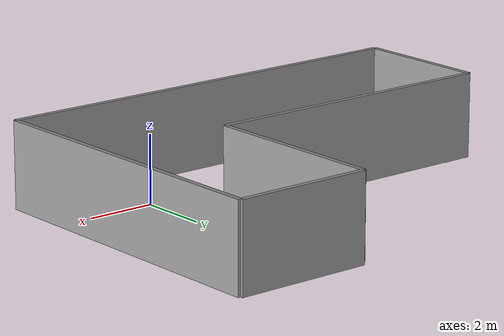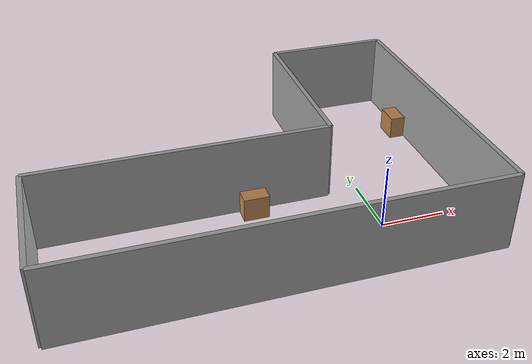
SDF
<?xml version='1.0'?>
<sdf version='1.6'>
  <model name='corridor'>
    <pose frame=''>0 0 0 0 0 0</pose>

    <!-- Wall_0 — south wall of horizontal leg: y=-2, x in [-10, 3], length 13 -->
    <link name='Wall_0'>
      <collision name='Wall_0_Collision'>
        <geometry>
          <box><size>13 0.15 2.5</size></box>
        </geometry>
        <pose frame=''>0 0 1.25 0 -0 0</pose>
      </collision>
      <visual name='Wall_0_Visual'>
        <pose frame=''>0 0 1.25 0 -0 0</pose>
        <geometry>
          <box><size>13 0.15 2.5</size></box>
        </geometry>
        <material>
          <script>
            <uri>file://media/materials/scripts/gazebo.material</uri>
            <name>Gazebo/Grey</name>
          </script>
          <ambient>1 1 1 1</ambient>
        </material>
      </visual>
      <pose frame=''>-3.5 -2 0 0 -0 0</pose>
    </link>

    <!-- Wall_1 — east wall (full L height): x=+3, y in [-2, 7.5], length 9.5 -->
    <link name='Wall_1'>
      <collision name='Wall_1_Collision'>
        <geometry>
          <box><size>9.5 0.15 2.5</size></box>
        </geometry>
        <pose frame=''>0 0 1.25 0 -0 0</pose>
      </collision>
      <visual name='Wall_1_Visual'>
        <pose frame=''>0 0 1.25 0 -0 0</pose>
        <geometry>
          <box><size>9.5 0.15 2.5</size></box>
        </geometry>
        <material>
          <script>
            <uri>file://media/materials/scripts/gazebo.material</uri>
            <name>Gazebo/Grey</name>
          </script>
          <ambient>1 1 1 1</ambient>
        </material>
      </visual>
      <pose frame=''>3 2.75 0 0 0 1.5708</pose>
    </link>

    <!-- Wall_2 — top of vertical leg: y=+7.5, x in [-1, 3], length 4 -->
    <link name='Wall_2'>
      <collision name='Wall_2_Collision'>
        <geometry>
          <box><size>4 0.15 2.5</size></box>
        </geometry>
        <pose frame=''>0 0 1.25 0 -0 0</pose>
      </collision>
      <visual name='Wall_2_Visual'>
        <pose frame=''>0 0 1.25 0 -0 0</pose>
        <geometry>
          <box><size>4 0.15 2.5</size></box>
        </geometry>
        <material>
          <script>
            <uri>file://media/materials/scripts/gazebo.material</uri>
            <name>Gazebo/Grey</name>
          </script>
          <ambient>1 1 1 1</ambient>
        </material>
      </visual>
      <pose frame=''>1 7.5 0 0 -0 0</pose>
    </link>

    <!-- Wall_3 — inside west wall of vertical leg: x=-1, y in [2, 7.5], length 5.5 -->
    <link name='Wall_3'>
      <collision name='Wall_3_Collision'>
        <geometry>
          <box><size>5.5 0.15 2.5</size></box>
        </geometry>
        <pose frame=''>0 0 1.25 0 -0 0</pose>
      </collision>
      <visual name='Wall_3_Visual'>
        <pose frame=''>0 0 1.25 0 -0 0</pose>
        <geometry>
          <box><size>5.5 0.15 2.5</size></box>
        </geometry>
        <material>
          <script>
            <uri>file://media/materials/scripts/gazebo.material</uri>
            <name>Gazebo/Grey</name>
          </script>
          <ambient>1 1 1 1</ambient>
        </material>
      </visual>
      <pose frame=''>-1 4.75 0 0 0 1.5708</pose>
    </link>

    <!-- Wall_4 — north wall of horizontal leg (west of vertical leg): y=+2, x in [-10, -1], length 9 -->
    <link name='Wall_4'>
      <collision name='Wall_4_Collision'>
        <geometry>
          <box><size>9 0.15 2.5</size></box>
        </geometry>
        <pose frame=''>0 0 1.25 0 -0 0</pose>
      </collision>
      <visual name='Wall_4_Visual'>
        <pose frame=''>0 0 1.25 0 -0 0</pose>
        <geometry>
          <box><size>9 0.15 2.5</size></box>
        </geometry>
        <material>
          <script>
            <uri>file://media/materials/scripts/gazebo.material</uri>
            <name>Gazebo/Grey</name>
          </script>
          <ambient>1 1 1 1</ambient>
        </material>
      </visual>
      <pose frame=''>-5.5 2 0 0 -0 0</pose>
    </link>

    <!-- Wall_5 — west wall of horizontal leg: x=-10, y in [-2, 2], length 4 -->
    <link name='Wall_5'>
      <collision name='Wall_5_Collision'>
        <geometry>
          <box><size>4 0.15 2.5</size></box>
        </geometry>
        <pose frame=''>0 0 1.25 0 -0 0</pose>
      </collision>
      <visual name='Wall_5_Visual'>
        <pose frame=''>0 0 1.25 0 -0 0</pose>
        <geometry>
          <box><size>4 0.15 2.5</size></box>
        </geometry>
        <material>
          <script>
            <uri>file://media/materials/scripts/gazebo.material</uri>
            <name>Gazebo/Grey</name>
          </script>
          <ambient>1 1 1 1</ambient>
        </material>
      </visual>
      <pose frame=''>-10 0 0 0 0 1.5708</pose>
    </link>

    <!-- Desk_1 — against south wall in horizontal leg, x=-7 -->
    <link name='Desk_1'>
      <collision name='Desk_1_Collision'>
        <geometry>
          <box><size>0.8 0.5 0.75</size></box>
        </geometry>
        <pose frame=''>0 0 0.375 0 0 0</pose>
      </collision>
      <visual name='Desk_1_Visual'>
        <pose frame=''>0 0 0.375 0 0 0</pose>
        <geometry>
          <box><size>0.8 0.5 0.75</size></box>
        </geometry>
        <material>
          <script>
            <uri>file://media/materials/scripts/gazebo.material</uri>
            <name>Gazebo/Wood</name>
          </script>
          <ambient>1 1 1 1</ambient>
        </material>
      </visual>
      <pose frame=''>-7 -1.65 0 0 0 0</pose>
    </link>

    <!-- Desk_2 — against north wall in horizontal leg, x=-3.5 -->
    <link name='Desk_2'>
      <collision name='Desk_2_Collision'>
        <geometry>
          <box><size>0.8 0.5 0.75</size></box>
        </geometry>
        <pose frame=''>0 0 0.375 0 0 0</pose>
      </collision>
      <visual name='Desk_2_Visual'>
        <pose frame=''>0 0 0.375 0 0 0</pose>
        <geometry>
          <box><size>0.8 0.5 0.75</size></box>
        </geometry>
        <material>
          <script>
            <uri>file://media/materials/scripts/gazebo.material</uri>
            <name>Gazebo/Wood</name>
          </script>
          <ambient>1 1 1 1</ambient>
        </material>
      </visual>
      <pose frame=''>-3.5 1.65 0 0 0 0</pose>
    </link>

    <!-- Desk_3 — against south wall near the corner, x=1 -->
    <link name='Desk_3'>
      <collision name='Desk_3_Collision'>
        <geometry>
          <box><size>0.8 0.5 0.75</size></box>
        </geometry>
        <pose frame=''>0 0 0.375 0 0 0</pose>
      </collision>
      <visual name='Desk_3_Visual'>
        <pose frame=''>0 0 0.375 0 0 0</pose>
        <geometry>
          <box><size>0.8 0.5 0.75</size></box>
        </geometry>
        <material>
          <script>
            <uri>file://media/materials/scripts/gazebo.material</uri>
            <name>Gazebo/Wood</name>
          </script>
          <ambient>1 1 1 1</ambient>
        </material>
      </visual>
      <pose frame=''>1 -1.65 0 0 0 0</pose>
    </link>

    <!-- Desk_4 — against east wall in vertical leg, y=5 (rotated 90°) -->
    <link name='Desk_4'>
      <collision name='Desk_4_Collision'>
        <geometry>
          <box><size>0.5 0.8 0.75</size></box>
        </geometry>
        <pose frame=''>0 0 0.375 0 0 0</pose>
      </collision>
      <visual name='Desk_4_Visual'>
        <pose frame=''>0 0 0.375 0 0 0</pose>
        <geometry>
          <box><size>0.5 0.8 0.75</size></box>
        </geometry>
        <material>
          <script>
            <uri>file://media/materials/scripts/gazebo.material</uri>
            <name>Gazebo/Wood</name>
          </script>
          <ambient>1 1 1 1</ambient>
        </material>
      </visual>
      <pose frame=''>2.65 5 0 0 0 0</pose>
    </link>

    <static>1</static>
  </model>
</sdf>
